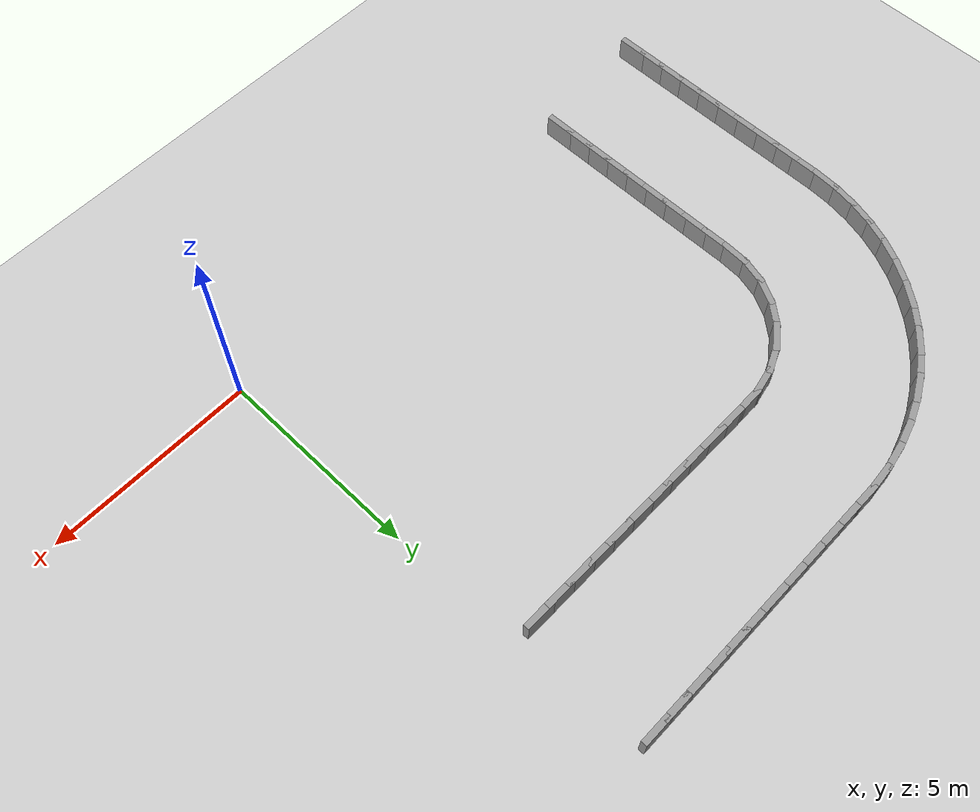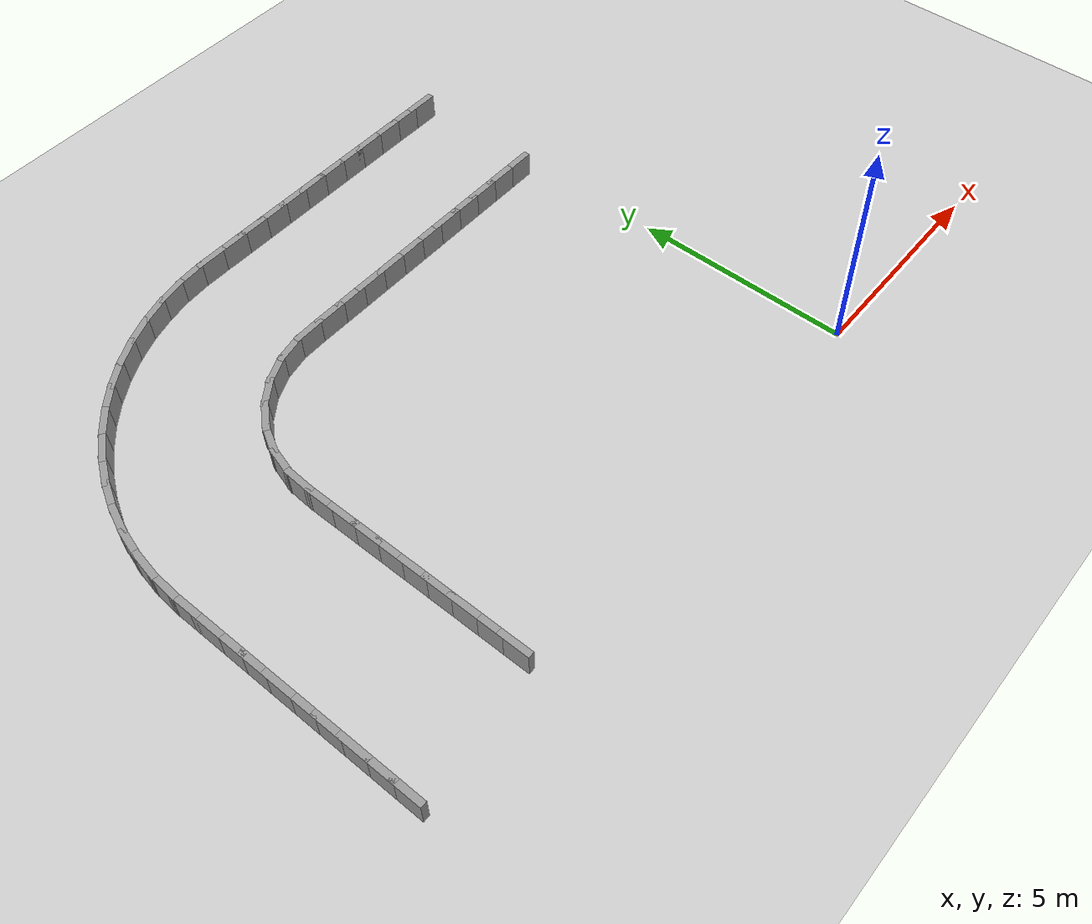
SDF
<sdf version="1.7">
 <world name="default">
  <model name="ground_plane">
   <static>1</static>
   <link name="link">
    <collision name="collision">
     <geometry><plane><normal>0 0 1</normal><size>100 100</size></plane></geometry>
     <surface><friction><ode><mu>100</mu><mu2>50</mu2></ode></friction></surface>
    </collision>
    <visual name="visual">
     <cast_shadows>0</cast_shadows>
     <geometry><plane><normal>0 0 1</normal><size>100 100</size></plane></geometry>
     <material>
      <script><uri>file://media/materials/scripts/gazebo.material</uri><name>Gazebo/Grey</name></script>
     </material>
    </visual>
   </link>
  </model>
  <model name="rand_rrect_01">
   <link name="Wall_20">
    <collision name="Wall_20_Collision">
     <geometry><box><size>0.7500 0.1500 0.6000</size></box></geometry>
     <pose>0 0 0.3000 0 -0 0</pose>
    </collision>
    <visual name="Wall_20_Visual">
     <pose>0 0 0.3000 0 -0 0</pose>
     <geometry><box><size>0.7500 0.1500 0.6000</size></box></geometry>
     <material>
      <script><uri>file://media/materials/scripts/gazebo.material</uri><name>Gazebo/Grey</name></script>
      <ambient>1 1 1 1</ambient>
     </material>
    </visual>
    <pose>-0.6795 8.3232 0 0 -0 3.14159</pose>
   </link>
   <link name="Wall_21">
    <collision name="Wall_21_Collision">
     <geometry><box><size>0.7500 0.1500 0.6000</size></box></geometry>
     <pose>0 0 0.3000 0 -0 0</pose>
    </collision>
    <visual name="Wall_21_Visual">
     <pose>0 0 0.3000 0 -0 0</pose>
     <geometry><box><size>0.7500 0.1500 0.6000</size></box></geometry>
     <material>
      <script><uri>file://media/materials/scripts/gazebo.material</uri><name>Gazebo/Grey</name></script>
      <ambient>1 1 1 1</ambient>
     </material>
    </visual>
    <pose>-1.2795 8.3232 0 0 -0 3.14159</pose>
   </link>
   <link name="Wall_22">
    <collision name="Wall_22_Collision">
     <geometry><box><size>0.7500 0.1500 0.6000</size></box></geometry>
     <pose>0 0 0.3000 0 -0 0</pose>
    </collision>
    <visual name="Wall_22_Visual">
     <pose>0 0 0.3000 0 -0 0</pose>
     <geometry><box><size>0.7500 0.1500 0.6000</size></box></geometry>
     <material>
      <script><uri>file://media/materials/scripts/gazebo.material</uri><name>Gazebo/Grey</name></script>
      <ambient>1 1 1 1</ambient>
     </material>
    </visual>
    <pose>-1.8795 8.3232 0 0 -0 3.14159</pose>
   </link>
   <link name="Wall_23">
    <collision name="Wall_23_Collision">
     <geometry><box><size>0.7500 0.1500 0.6000</size></box></geometry>
     <pose>0 0 0.3000 0 -0 0</pose>
    </collision>
    <visual name="Wall_23_Visual">
     <pose>0 0 0.3000 0 -0 0</pose>
     <geometry><box><size>0.7500 0.1500 0.6000</size></box></geometry>
     <material>
      <script><uri>file://media/materials/scripts/gazebo.material</uri><name>Gazebo/Grey</name></script>
      <ambient>1 1 1 1</ambient>
     </material>
    </visual>
    <pose>-2.4795 8.3232 0 0 -0 3.14159</pose>
   </link>
   <link name="Wall_24">
    <collision name="Wall_24_Collision">
     <geometry><box><size>0.7500 0.1500 0.6000</size></box></geometry>
     <pose>0 0 0.3000 0 -0 0</pose>
    </collision>
    <visual name="Wall_24_Visual">
     <pose>0 0 0.3000 0 -0 0</pose>
     <geometry><box><size>0.7500 0.1500 0.6000</size></box></geometry>
     <material>
      <script><uri>file://media/materials/scripts/gazebo.material</uri><name>Gazebo/Grey</name></script>
      <ambient>1 1 1 1</ambient>
     </material>
    </visual>
    <pose>-3.0795 8.3232 0 0 -0 3.14159</pose>
   </link>
   <link name="Wall_25">
    <collision name="Wall_25_Collision">
     <geometry><box><size>0.7500 0.1500 0.6000</size></box></geometry>
     <pose>0 0 0.3000 0 -0 0</pose>
    </collision>
    <visual name="Wall_25_Visual">
     <pose>0 0 0.3000 0 -0 0</pose>
     <geometry><box><size>0.7500 0.1500 0.6000</size></box></geometry>
     <material>
      <script><uri>file://media/materials/scripts/gazebo.material</uri><name>Gazebo/Grey</name></script>
      <ambient>1 1 1 1</ambient>
     </material>
    </visual>
    <pose>-3.6795 8.3232 0 0 -0 3.14159</pose>
   </link>
   <link name="Wall_26">
    <collision name="Wall_26_Collision">
     <geometry><box><size>0.7500 0.1500 0.6000</size></box></geometry>
     <pose>0 0 0.3000 0 -0 0</pose>
    </collision>
    <visual name="Wall_26_Visual">
     <pose>0 0 0.3000 0 -0 0</pose>
     <geometry><box><size>0.7500 0.1500 0.6000</size></box></geometry>
     <material>
      <script><uri>file://media/materials/scripts/gazebo.material</uri><name>Gazebo/Grey</name></script>
      <ambient>1 1 1 1</ambient>
     </material>
    </visual>
    <pose>-4.2795 8.3232 0 0 -0 3.14159</pose>
   </link>
   <link name="Wall_27">
    <collision name="Wall_27_Collision">
     <geometry><box><size>0.7500 0.1500 0.6000</size></box></geometry>
     <pose>0 0 0.3000 0 -0 0</pose>
    </collision>
    <visual name="Wall_27_Visual">
     <pose>0 0 0.3000 0 -0 0</pose>
     <geometry><box><size>0.7500 0.1500 0.6000</size></box></geometry>
     <material>
      <script><uri>file://media/materials/scripts/gazebo.material</uri><name>Gazebo/Grey</name></script>
      <ambient>1 1 1 1</ambient>
     </material>
    </visual>
    <pose>-4.8795 8.3232 0 0 -0 3.14159</pose>
   </link>
   <link name="Wall_28">
    <collision name="Wall_28_Collision">
     <geometry><box><size>0.7500 0.1500 0.6000</size></box></geometry>
     <pose>0 0 0.3000 0 -0 0</pose>
    </collision>
    <visual name="Wall_28_Visual">
     <pose>0 0 0.3000 0 -0 0</pose>
     <geometry><box><size>0.7500 0.1500 0.6000</size></box></geometry>
     <material>
      <script><uri>file://media/materials/scripts/gazebo.material</uri><name>Gazebo/Grey</name></script>
      <ambient>1 1 1 1</ambient>
     </material>
    </visual>
    <pose>-5.4795 8.3232 0 0 -0 3.14159</pose>
   </link>
   <link name="Wall_29">
    <collision name="Wall_29_Collision">
     <geometry><box><size>0.7500 0.1500 0.6000</size></box></geometry>
     <pose>0 0 0.3000 0 -0 0</pose>
    </collision>
    <visual name="Wall_29_Visual">
     <pose>0 0 0.3000 0 -0 0</pose>
     <geometry><box><size>0.7500 0.1500 0.6000</size></box></geometry>
     <material>
      <script><uri>file://media/materials/scripts/gazebo.material</uri><name>Gazebo/Grey</name></script>
      <ambient>1 1 1 1</ambient>
     </material>
    </visual>
    <pose>-6.0795 8.3232 0 0 -0 3.14159</pose>
   </link>
   <link name="Wall_30">
    <collision name="Wall_30_Collision">
     <geometry><box><size>0.7500 0.1500 0.6000</size></box></geometry>
     <pose>0 0 0.3000 0 -0 0</pose>
    </collision>
    <visual name="Wall_30_Visual">
     <pose>0 0 0.3000 0 -0 0</pose>
     <geometry><box><size>0.7500 0.1500 0.6000</size></box></geometry>
     <material>
      <script><uri>file://media/materials/scripts/gazebo.material</uri><name>Gazebo/Grey</name></script>
      <ambient>1 1 1 1</ambient>
     </material>
    </visual>
    <pose>-6.6795 8.3232 0 0 -0 3.14159</pose>
   </link>
   <link name="Wall_31">
    <collision name="Wall_31_Collision">
     <geometry><box><size>0.7497 0.1500 0.6000</size></box></geometry>
     <pose>0 0 0.3000 0 -0 0</pose>
    </collision>
    <visual name="Wall_31_Visual">
     <pose>0 0 0.3000 0 -0 0</pose>
     <geometry><box><size>0.7497 0.1500 0.6000</size></box></geometry>
     <material>
      <script><uri>file://media/materials/scripts/gazebo.material</uri><name>Gazebo/Grey</name></script>
      <ambient>1 1 1 1</ambient>
     </material>
    </visual>
    <pose>-7.2793 8.3170 0 0 -0 -3.12059</pose>
   </link>
   <link name="Wall_32">
    <collision name="Wall_32_Collision">
     <geometry><box><size>0.7488 0.1500 0.6000</size></box></geometry>
     <pose>0 0 0.3000 0 -0 0</pose>
    </collision>
    <visual name="Wall_32_Visual">
     <pose>0 0 0.3000 0 -0 0</pose>
     <geometry><box><size>0.7488 0.1500 0.6000</size></box></geometry>
     <material>
      <script><uri>file://media/materials/scripts/gazebo.material</uri><name>Gazebo/Grey</name></script>
      <ambient>1 1 1 1</ambient>
     </material>
    </visual>
    <pose>-7.8722 8.2496 0 0 -0 -2.93620</pose>
   </link>
   <link name="Wall_33">
    <collision name="Wall_33_Collision">
     <geometry><box><size>0.7488 0.1500 0.6000</size></box></geometry>
     <pose>0 0 0.3000 0 -0 0</pose>
    </collision>
    <visual name="Wall_33_Visual">
     <pose>0 0 0.3000 0 -0 0</pose>
     <geometry><box><size>0.7488 0.1500 0.6000</size></box></geometry>
     <material>
      <script><uri>file://media/materials/scripts/gazebo.material</uri><name>Gazebo/Grey</name></script>
      <ambient>1 1 1 1</ambient>
     </material>
    </visual>
    <pose>-8.4382 8.0652 0 0 -0 -2.71719</pose>
   </link>
   <link name="Wall_34">
    <collision name="Wall_34_Collision">
     <geometry><box><size>0.7488 0.1500 0.6000</size></box></geometry>
     <pose>0 0 0.3000 0 -0 0</pose>
    </collision>
    <visual name="Wall_34_Visual">
     <pose>0 0 0.3000 0 -0 0</pose>
     <geometry><box><size>0.7488 0.1500 0.6000</size></box></geometry>
     <material>
      <script><uri>file://media/materials/scripts/gazebo.material</uri><name>Gazebo/Grey</name></script>
      <ambient>1 1 1 1</ambient>
     </material>
    </visual>
    <pose>-8.9506 7.7623 0 0 -0 -2.49821</pose>
   </link>
   <link name="Wall_35">
    <collision name="Wall_35_Collision">
     <geometry><box><size>0.7488 0.1500 0.6000</size></box></geometry>
     <pose>0 0 0.3000 0 -0 0</pose>
    </collision>
    <visual name="Wall_35_Visual">
     <pose>0 0 0.3000 0 -0 0</pose>
     <geometry><box><size>0.7488 0.1500 0.6000</size></box></geometry>
     <material>
      <script><uri>file://media/materials/scripts/gazebo.material</uri><name>Gazebo/Grey</name></script>
      <ambient>1 1 1 1</ambient>
     </material>
    </visual>
    <pose>-9.3849 7.3554 0 0 -0 -2.27922</pose>
   </link>
   <link name="Wall_36">
    <collision name="Wall_36_Collision">
     <geometry><box><size>0.7488 0.1500 0.6000</size></box></geometry>
     <pose>0 0 0.3000 0 -0 0</pose>
    </collision>
    <visual name="Wall_36_Visual">
     <pose>0 0 0.3000 0 -0 0</pose>
     <geometry><box><size>0.7488 0.1500 0.6000</size></box></geometry>
     <material>
      <script><uri>file://media/materials/scripts/gazebo.material</uri><name>Gazebo/Grey</name></script>
      <ambient>1 1 1 1</ambient>
     </material>
    </visual>
    <pose>-9.7205 6.8638 0 0 -0 -2.06021</pose>
   </link>
   <link name="Wall_37">
    <collision name="Wall_37_Collision">
     <geometry><box><size>0.7488 0.1500 0.6000</size></box></geometry>
     <pose>0 0 0.3000 0 -0 0</pose>
    </collision>
    <visual name="Wall_37_Visual">
     <pose>0 0 0.3000 0 -0 0</pose>
     <geometry><box><size>0.7488 0.1500 0.6000</size></box></geometry>
     <material>
      <script><uri>file://media/materials/scripts/gazebo.material</uri><name>Gazebo/Grey</name></script>
      <ambient>1 1 1 1</ambient>
     </material>
    </visual>
    <pose>-9.9412 6.3110 0 0 -0 -1.84123</pose>
   </link>
   <link name="Wall_38">
    <collision name="Wall_38_Collision">
     <geometry><box><size>0.7491 0.1500 0.6000</size></box></geometry>
     <pose>0 0 0.3000 0 -0 0</pose>
    </collision>
    <visual name="Wall_38_Visual">
     <pose>0 0 0.3000 0 -0 0</pose>
     <geometry><box><size>0.7491 0.1500 0.6000</size></box></geometry>
     <material>
      <script><uri>file://media/materials/scripts/gazebo.material</uri><name>Gazebo/Grey</name></script>
      <ambient>1 1 1 1</ambient>
     </material>
    </visual>
    <pose>-10.0389 5.7234 0 0 -0 -1.62993</pose>
   </link>
   <link name="Wall_39">
    <collision name="Wall_39_Collision">
     <geometry><box><size>0.7500 0.1500 0.6000</size></box></geometry>
     <pose>0 0 0.3000 0 -0 0</pose>
    </collision>
    <visual name="Wall_39_Visual">
     <pose>0 0 0.3000 0 -0 0</pose>
     <geometry><box><size>0.7500 0.1500 0.6000</size></box></geometry>
     <material>
      <script><uri>file://media/materials/scripts/gazebo.material</uri><name>Gazebo/Grey</name></script>
      <ambient>1 1 1 1</ambient>
     </material>
    </visual>
    <pose>-10.0566 5.1244 0 0 -0 -1.57080</pose>
   </link>
   <link name="Wall_40">
    <collision name="Wall_40_Collision">
     <geometry><box><size>0.7500 0.1500 0.6000</size></box></geometry>
     <pose>0 0 0.3000 0 -0 0</pose>
    </collision>
    <visual name="Wall_40_Visual">
     <pose>0 0 0.3000 0 -0 0</pose>
     <geometry><box><size>0.7500 0.1500 0.6000</size></box></geometry>
     <material>
      <script><uri>file://media/materials/scripts/gazebo.material</uri><name>Gazebo/Grey</name></script>
      <ambient>1 1 1 1</ambient>
     </material>
    </visual>
    <pose>-10.0566 4.5244 0 0 -0 -1.57080</pose>
   </link>
   <link name="Wall_41">
    <collision name="Wall_41_Collision">
     <geometry><box><size>0.7500 0.1500 0.6000</size></box></geometry>
     <pose>0 0 0.3000 0 -0 0</pose>
    </collision>
    <visual name="Wall_41_Visual">
     <pose>0 0 0.3000 0 -0 0</pose>
     <geometry><box><size>0.7500 0.1500 0.6000</size></box></geometry>
     <material>
      <script><uri>file://media/materials/scripts/gazebo.material</uri><name>Gazebo/Grey</name></script>
      <ambient>1 1 1 1</ambient>
     </material>
    </visual>
    <pose>-10.0566 3.9244 0 0 -0 -1.57080</pose>
   </link>
   <link name="Wall_42">
    <collision name="Wall_42_Collision">
     <geometry><box><size>0.7500 0.1500 0.6000</size></box></geometry>
     <pose>0 0 0.3000 0 -0 0</pose>
    </collision>
    <visual name="Wall_42_Visual">
     <pose>0 0 0.3000 0 -0 0</pose>
     <geometry><box><size>0.7500 0.1500 0.6000</size></box></geometry>
     <material>
      <script><uri>file://media/materials/scripts/gazebo.material</uri><name>Gazebo/Grey</name></script>
      <ambient>1 1 1 1</ambient>
     </material>
    </visual>
    <pose>-10.0566 3.3244 0 0 -0 -1.57080</pose>
   </link>
   <link name="Wall_43">
    <collision name="Wall_43_Collision">
     <geometry><box><size>0.7500 0.1500 0.6000</size></box></geometry>
     <pose>0 0 0.3000 0 -0 0</pose>
    </collision>
    <visual name="Wall_43_Visual">
     <pose>0 0 0.3000 0 -0 0</pose>
     <geometry><box><size>0.7500 0.1500 0.6000</size></box></geometry>
     <material>
      <script><uri>file://media/materials/scripts/gazebo.material</uri><name>Gazebo/Grey</name></script>
      <ambient>1 1 1 1</ambient>
     </material>
    </visual>
    <pose>-10.0566 2.7244 0 0 -0 -1.57080</pose>
   </link>
   <link name="Wall_44">
    <collision name="Wall_44_Collision">
     <geometry><box><size>0.7500 0.1500 0.6000</size></box></geometry>
     <pose>0 0 0.3000 0 -0 0</pose>
    </collision>
    <visual name="Wall_44_Visual">
     <pose>0 0 0.3000 0 -0 0</pose>
     <geometry><box><size>0.7500 0.1500 0.6000</size></box></geometry>
     <material>
      <script><uri>file://media/materials/scripts/gazebo.material</uri><name>Gazebo/Grey</name></script>
      <ambient>1 1 1 1</ambient>
     </material>
    </visual>
    <pose>-10.0566 2.1244 0 0 -0 -1.57080</pose>
   </link>
   <link name="Wall_45">
    <collision name="Wall_45_Collision">
     <geometry><box><size>0.7500 0.1500 0.6000</size></box></geometry>
     <pose>0 0 0.3000 0 -0 0</pose>
    </collision>
    <visual name="Wall_45_Visual">
     <pose>0 0 0.3000 0 -0 0</pose>
     <geometry><box><size>0.7500 0.1500 0.6000</size></box></geometry>
     <material>
      <script><uri>file://media/materials/scripts/gazebo.material</uri><name>Gazebo/Grey</name></script>
      <ambient>1 1 1 1</ambient>
     </material>
    </visual>
    <pose>-10.0566 1.5244 0 0 -0 -1.57080</pose>
   </link>
   <link name="Wall_46">
    <collision name="Wall_46_Collision">
     <geometry><box><size>0.7500 0.1500 0.6000</size></box></geometry>
     <pose>0 0 0.3000 0 -0 0</pose>
    </collision>
    <visual name="Wall_46_Visual">
     <pose>0 0 0.3000 0 -0 0</pose>
     <geometry><box><size>0.7500 0.1500 0.6000</size></box></geometry>
     <material>
      <script><uri>file://media/materials/scripts/gazebo.material</uri><name>Gazebo/Grey</name></script>
      <ambient>1 1 1 1</ambient>
     </material>
    </visual>
    <pose>-10.0566 0.9244 0 0 -0 -1.57080</pose>
   </link>
   <link name="Wall_47">
    <collision name="Wall_47_Collision">
     <geometry><box><size>0.7500 0.1500 0.6000</size></box></geometry>
     <pose>0 0 0.3000 0 -0 0</pose>
    </collision>
    <visual name="Wall_47_Visual">
     <pose>0 0 0.3000 0 -0 0</pose>
     <geometry><box><size>0.7500 0.1500 0.6000</size></box></geometry>
     <material>
      <script><uri>file://media/materials/scripts/gazebo.material</uri><name>Gazebo/Grey</name></script>
      <ambient>1 1 1 1</ambient>
     </material>
    </visual>
    <pose>-10.0566 0.3244 0 0 -0 -1.57080</pose>
   </link>
   <link name="Wall_142">
    <collision name="Wall_142_Collision">
     <geometry><box><size>0.7500 0.1500 0.6000</size></box></geometry>
     <pose>0 0 0.3000 0 -0 0</pose>
    </collision>
    <visual name="Wall_142_Visual">
     <pose>0 0 0.3000 0 -0 0</pose>
     <geometry><box><size>0.7500 0.1500 0.6000</size></box></geometry>
     <material>
      <script><uri>file://media/materials/scripts/gazebo.material</uri><name>Gazebo/Grey</name></script>
      <ambient>1 1 1 1</ambient>
     </material>
    </visual>
    <pose>-0.5693 11.4492 0 0 -0 3.14159</pose>
   </link>
   <link name="Wall_143">
    <collision name="Wall_143_Collision">
     <geometry><box><size>0.7500 0.1500 0.6000</size></box></geometry>
     <pose>0 0 0.3000 0 -0 0</pose>
    </collision>
    <visual name="Wall_143_Visual">
     <pose>0 0 0.3000 0 -0 0</pose>
     <geometry><box><size>0.7500 0.1500 0.6000</size></box></geometry>
     <material>
      <script><uri>file://media/materials/scripts/gazebo.material</uri><name>Gazebo/Grey</name></script>
      <ambient>1 1 1 1</ambient>
     </material>
    </visual>
    <pose>-1.1693 11.4492 0 0 -0 3.14159</pose>
   </link>
   <link name="Wall_144">
    <collision name="Wall_144_Collision">
     <geometry><box><size>0.7500 0.1500 0.6000</size></box></geometry>
     <pose>0 0 0.3000 0 -0 0</pose>
    </collision>
    <visual name="Wall_144_Visual">
     <pose>0 0 0.3000 0 -0 0</pose>
     <geometry><box><size>0.7500 0.1500 0.6000</size></box></geometry>
     <material>
      <script><uri>file://media/materials/scripts/gazebo.material</uri><name>Gazebo/Grey</name></script>
      <ambient>1 1 1 1</ambient>
     </material>
    </visual>
    <pose>-1.7693 11.4492 0 0 -0 3.14159</pose>
   </link>
   <link name="Wall_145">
    <collision name="Wall_145_Collision">
     <geometry><box><size>0.7500 0.1500 0.6000</size></box></geometry>
     <pose>0 0 0.3000 0 -0 0</pose>
    </collision>
    <visual name="Wall_145_Visual">
     <pose>0 0 0.3000 0 -0 0</pose>
     <geometry><box><size>0.7500 0.1500 0.6000</size></box></geometry>
     <material>
      <script><uri>file://media/materials/scripts/gazebo.material</uri><name>Gazebo/Grey</name></script>
      <ambient>1 1 1 1</ambient>
     </material>
    </visual>
    <pose>-2.3693 11.4492 0 0 -0 3.14159</pose>
   </link>
   <link name="Wall_146">
    <collision name="Wall_146_Collision">
     <geometry><box><size>0.7500 0.1500 0.6000</size></box></geometry>
     <pose>0 0 0.3000 0 -0 0</pose>
    </collision>
    <visual name="Wall_146_Visual">
     <pose>0 0 0.3000 0 -0 0</pose>
     <geometry><box><size>0.7500 0.1500 0.6000</size></box></geometry>
     <material>
      <script><uri>file://media/materials/scripts/gazebo.material</uri><name>Gazebo/Grey</name></script>
      <ambient>1 1 1 1</ambient>
     </material>
    </visual>
    <pose>-2.9693 11.4492 0 0 -0 3.14159</pose>
   </link>
   <link name="Wall_147">
    <collision name="Wall_147_Collision">
     <geometry><box><size>0.7500 0.1500 0.6000</size></box></geometry>
     <pose>0 0 0.3000 0 -0 0</pose>
    </collision>
    <visual name="Wall_147_Visual">
     <pose>0 0 0.3000 0 -0 0</pose>
     <geometry><box><size>0.7500 0.1500 0.6000</size></box></geometry>
     <material>
      <script><uri>file://media/materials/scripts/gazebo.material</uri><name>Gazebo/Grey</name></script>
      <ambient>1 1 1 1</ambient>
     </material>
    </visual>
    <pose>-3.5693 11.4492 0 0 -0 3.14159</pose>
   </link>
   <link name="Wall_148">
    <collision name="Wall_148_Collision">
     <geometry><box><size>0.7500 0.1500 0.6000</size></box></geometry>
     <pose>0 0 0.3000 0 -0 0</pose>
    </collision>
    <visual name="Wall_148_Visual">
     <pose>0 0 0.3000 0 -0 0</pose>
     <geometry><box><size>0.7500 0.1500 0.6000</size></box></geometry>
     <material>
      <script><uri>file://media/materials/scripts/gazebo.material</uri><name>Gazebo/Grey</name></script>
      <ambient>1 1 1 1</ambient>
     </material>
    </visual>
    <pose>-4.1693 11.4492 0 0 -0 3.14159</pose>
   </link>
   <link name="Wall_149">
    <collision name="Wall_149_Collision">
     <geometry><box><size>0.7500 0.1500 0.6000</size></box></geometry>
     <pose>0 0 0.3000 0 -0 0</pose>
    </collision>
    <visual name="Wall_149_Visual">
     <pose>0 0 0.3000 0 -0 0</pose>
     <geometry><box><size>0.7500 0.1500 0.6000</size></box></geometry>
     <material>
      <script><uri>file://media/materials/scripts/gazebo.material</uri><name>Gazebo/Grey</name></script>
      <ambient>1 1 1 1</ambient>
     </material>
    </visual>
    <pose>-4.7693 11.4492 0 0 -0 3.14159</pose>
   </link>
   <link name="Wall_150">
    <collision name="Wall_150_Collision">
     <geometry><box><size>0.7500 0.1500 0.6000</size></box></geometry>
     <pose>0 0 0.3000 0 -0 0</pose>
    </collision>
    <visual name="Wall_150_Visual">
     <pose>0 0 0.3000 0 -0 0</pose>
     <geometry><box><size>0.7500 0.1500 0.6000</size></box></geometry>
     <material>
      <script><uri>file://media/materials/scripts/gazebo.material</uri><name>Gazebo/Grey</name></script>
      <ambient>1 1 1 1</ambient>
     </material>
    </visual>
    <pose>-5.3693 11.4492 0 0 -0 3.14159</pose>
   </link>
   <link name="Wall_151">
    <collision name="Wall_151_Collision">
     <geometry><box><size>0.7500 0.1500 0.6000</size></box></geometry>
     <pose>0 0 0.3000 0 -0 0</pose>
    </collision>
    <visual name="Wall_151_Visual">
     <pose>0 0 0.3000 0 -0 0</pose>
     <geometry><box><size>0.7500 0.1500 0.6000</size></box></geometry>
     <material>
      <script><uri>file://media/materials/scripts/gazebo.material</uri><name>Gazebo/Grey</name></script>
      <ambient>1 1 1 1</ambient>
     </material>
    </visual>
    <pose>-5.9693 11.4492 0 0 -0 3.14159</pose>
   </link>
   <link name="Wall_152">
    <collision name="Wall_152_Collision">
     <geometry><box><size>0.7500 0.1500 0.6000</size></box></geometry>
     <pose>0 0 0.3000 0 -0 0</pose>
    </collision>
    <visual name="Wall_152_Visual">
     <pose>0 0 0.3000 0 -0 0</pose>
     <geometry><box><size>0.7500 0.1500 0.6000</size></box></geometry>
     <material>
      <script><uri>file://media/materials/scripts/gazebo.material</uri><name>Gazebo/Grey</name></script>
      <ambient>1 1 1 1</ambient>
     </material>
    </visual>
    <pose>-6.5693 11.4492 0 0 -0 3.14159</pose>
   </link>
   <link name="Wall_153">
    <collision name="Wall_153_Collision">
     <geometry><box><size>0.7500 0.1500 0.6000</size></box></geometry>
     <pose>0 0 0.3000 0 -0 0</pose>
    </collision>
    <visual name="Wall_153_Visual">
     <pose>0 0 0.3000 0 -0 0</pose>
     <geometry><box><size>0.7500 0.1500 0.6000</size></box></geometry>
     <material>
      <script><uri>file://media/materials/scripts/gazebo.material</uri><name>Gazebo/Grey</name></script>
      <ambient>1 1 1 1</ambient>
     </material>
    </visual>
    <pose>-7.1693 11.4482 0 0 -0 -3.13827</pose>
   </link>
   <link name="Wall_154">
    <collision name="Wall_154_Collision">
     <geometry><box><size>0.7497 0.1500 0.6000</size></box></geometry>
     <pose>0 0 0.3000 0 -0 0</pose>
    </collision>
    <visual name="Wall_154_Visual">
     <pose>0 0 0.3000 0 -0 0</pose>
     <geometry><box><size>0.7497 0.1500 0.6000</size></box></geometry>
     <material>
      <script><uri>file://media/materials/scripts/gazebo.material</uri><name>Gazebo/Grey</name></script>
      <ambient>1 1 1 1</ambient>
     </material>
    </visual>
    <pose>-7.7682 11.4241 0 0 -0 -3.06444</pose>
   </link>
   <link name="Wall_155">
    <collision name="Wall_155_Collision">
     <geometry><box><size>0.7497 0.1500 0.6000</size></box></geometry>
     <pose>0 0 0.3000 0 -0 0</pose>
    </collision>
    <visual name="Wall_155_Visual">
     <pose>0 0 0.3000 0 -0 0</pose>
     <geometry><box><size>0.7497 0.1500 0.6000</size></box></geometry>
     <material>
      <script><uri>file://media/materials/scripts/gazebo.material</uri><name>Gazebo/Grey</name></script>
      <ambient>1 1 1 1</ambient>
     </material>
    </visual>
    <pose>-8.3623 11.3475 0 0 -0 -2.96217</pose>
   </link>
   <link name="Wall_156">
    <collision name="Wall_156_Collision">
     <geometry><box><size>0.7497 0.1500 0.6000</size></box></geometry>
     <pose>0 0 0.3000 0 -0 0</pose>
    </collision>
    <visual name="Wall_156_Visual">
     <pose>0 0 0.3000 0 -0 0</pose>
     <geometry><box><size>0.7497 0.1500 0.6000</size></box></geometry>
     <material>
      <script><uri>file://media/materials/scripts/gazebo.material</uri><name>Gazebo/Grey</name></script>
      <ambient>1 1 1 1</ambient>
     </material>
    </visual>
    <pose>-8.9454 11.2106 0 0 -0 -2.85988</pose>
   </link>
   <link name="Wall_157">
    <collision name="Wall_157_Collision">
     <geometry><box><size>0.7497 0.1500 0.6000</size></box></geometry>
     <pose>0 0 0.3000 0 -0 0</pose>
    </collision>
    <visual name="Wall_157_Visual">
     <pose>0 0 0.3000 0 -0 0</pose>
     <geometry><box><size>0.7497 0.1500 0.6000</size></box></geometry>
     <material>
      <script><uri>file://media/materials/scripts/gazebo.material</uri><name>Gazebo/Grey</name></script>
      <ambient>1 1 1 1</ambient>
     </material>
    </visual>
    <pose>-9.5115 11.0149 0 0 -0 -2.75757</pose>
   </link>
   <link name="Wall_158">
    <collision name="Wall_158_Collision">
     <geometry><box><size>0.7497 0.1500 0.6000</size></box></geometry>
     <pose>0 0 0.3000 0 -0 0</pose>
    </collision>
    <visual name="Wall_158_Visual">
     <pose>0 0 0.3000 0 -0 0</pose>
     <geometry><box><size>0.7497 0.1500 0.6000</size></box></geometry>
     <material>
      <script><uri>file://media/materials/scripts/gazebo.material</uri><name>Gazebo/Grey</name></script>
      <ambient>1 1 1 1</ambient>
     </material>
    </visual>
    <pose>-10.0546 10.7624 0 0 -0 -2.65529</pose>
   </link>
   <link name="Wall_159">
    <collision name="Wall_159_Collision">
     <geometry><box><size>0.7497 0.1500 0.6000</size></box></geometry>
     <pose>0 0 0.3000 0 -0 0</pose>
    </collision>
    <visual name="Wall_159_Visual">
     <pose>0 0 0.3000 0 -0 0</pose>
     <geometry><box><size>0.7497 0.1500 0.6000</size></box></geometry>
     <material>
      <script><uri>file://media/materials/scripts/gazebo.material</uri><name>Gazebo/Grey</name></script>
      <ambient>1 1 1 1</ambient>
     </material>
    </visual>
    <pose>-10.5691 10.4558 0 0 -0 -2.55302</pose>
   </link>
   <link name="Wall_160">
    <collision name="Wall_160_Collision">
     <geometry><box><size>0.7497 0.1500 0.6000</size></box></geometry>
     <pose>0 0 0.3000 0 -0 0</pose>
    </collision>
    <visual name="Wall_160_Visual">
     <pose>0 0 0.3000 0 -0 0</pose>
     <geometry><box><size>0.7497 0.1500 0.6000</size></box></geometry>
     <material>
      <script><uri>file://media/materials/scripts/gazebo.material</uri><name>Gazebo/Grey</name></script>
      <ambient>1 1 1 1</ambient>
     </material>
    </visual>
    <pose>-11.0496 10.0982 0 0 -0 -2.45072</pose>
   </link>
   <link name="Wall_161">
    <collision name="Wall_161_Collision">
     <geometry><box><size>0.7497 0.1500 0.6000</size></box></geometry>
     <pose>0 0 0.3000 0 -0 0</pose>
    </collision>
    <visual name="Wall_161_Visual">
     <pose>0 0 0.3000 0 -0 0</pose>
     <geometry><box><size>0.7497 0.1500 0.6000</size></box></geometry>
     <material>
      <script><uri>file://media/materials/scripts/gazebo.material</uri><name>Gazebo/Grey</name></script>
      <ambient>1 1 1 1</ambient>
     </material>
    </visual>
    <pose>-11.4911 9.6935 0 0 -0 -2.34842</pose>
   </link>
   <link name="Wall_162">
    <collision name="Wall_162_Collision">
     <geometry><box><size>0.7497 0.1500 0.6000</size></box></geometry>
     <pose>0 0 0.3000 0 -0 0</pose>
    </collision>
    <visual name="Wall_162_Visual">
     <pose>0 0 0.3000 0 -0 0</pose>
     <geometry><box><size>0.7497 0.1500 0.6000</size></box></geometry>
     <material>
      <script><uri>file://media/materials/scripts/gazebo.material</uri><name>Gazebo/Grey</name></script>
      <ambient>1 1 1 1</ambient>
     </material>
    </visual>
    <pose>-11.8890 9.2457 0 0 -0 -2.24614</pose>
   </link>
   <link name="Wall_163">
    <collision name="Wall_163_Collision">
     <geometry><box><size>0.7497 0.1500 0.6000</size></box></geometry>
     <pose>0 0 0.3000 0 -0 0</pose>
    </collision>
    <visual name="Wall_163_Visual">
     <pose>0 0 0.3000 0 -0 0</pose>
     <geometry><box><size>0.7497 0.1500 0.6000</size></box></geometry>
     <material>
      <script><uri>file://media/materials/scripts/gazebo.material</uri><name>Gazebo/Grey</name></script>
      <ambient>1 1 1 1</ambient>
     </material>
    </visual>
    <pose>-12.2390 8.7597 0 0 -0 -2.14387</pose>
   </link>
   <link name="Wall_164">
    <collision name="Wall_164_Collision">
     <geometry><box><size>0.7497 0.1500 0.6000</size></box></geometry>
     <pose>0 0 0.3000 0 -0 0</pose>
    </collision>
    <visual name="Wall_164_Visual">
     <pose>0 0 0.3000 0 -0 0</pose>
     <geometry><box><size>0.7497 0.1500 0.6000</size></box></geometry>
     <material>
      <script><uri>file://media/materials/scripts/gazebo.material</uri><name>Gazebo/Grey</name></script>
      <ambient>1 1 1 1</ambient>
     </material>
    </visual>
    <pose>-12.5376 8.2405 0 0 -0 -2.04155</pose>
   </link>
   <link name="Wall_165">
    <collision name="Wall_165_Collision">
     <geometry><box><size>0.7497 0.1500 0.6000</size></box></geometry>
     <pose>0 0 0.3000 0 -0 0</pose>
    </collision>
    <visual name="Wall_165_Visual">
     <pose>0 0 0.3000 0 -0 0</pose>
     <geometry><box><size>0.7497 0.1500 0.6000</size></box></geometry>
     <material>
      <script><uri>file://media/materials/scripts/gazebo.material</uri><name>Gazebo/Grey</name></script>
      <ambient>1 1 1 1</ambient>
     </material>
    </visual>
    <pose>-12.7817 7.6935 0 0 -0 -1.93927</pose>
   </link>
   <link name="Wall_166">
    <collision name="Wall_166_Collision">
     <geometry><box><size>0.7497 0.1500 0.6000</size></box></geometry>
     <pose>0 0 0.3000 0 -0 0</pose>
    </collision>
    <visual name="Wall_166_Visual">
     <pose>0 0 0.3000 0 -0 0</pose>
     <geometry><box><size>0.7497 0.1500 0.6000</size></box></geometry>
     <material>
      <script><uri>file://media/materials/scripts/gazebo.material</uri><name>Gazebo/Grey</name></script>
      <ambient>1 1 1 1</ambient>
     </material>
    </visual>
    <pose>-12.9685 7.1245 0 0 -0 -1.83700</pose>
   </link>
   <link name="Wall_167">
    <collision name="Wall_167_Collision">
     <geometry><box><size>0.7497 0.1500 0.6000</size></box></geometry>
     <pose>0 0 0.3000 0 -0 0</pose>
    </collision>
    <visual name="Wall_167_Visual">
     <pose>0 0 0.3000 0 -0 0</pose>
     <geometry><box><size>0.7497 0.1500 0.6000</size></box></geometry>
     <material>
      <script><uri>file://media/materials/scripts/gazebo.material</uri><name>Gazebo/Grey</name></script>
      <ambient>1 1 1 1</ambient>
     </material>
    </visual>
    <pose>-13.0964 6.5393 0 0 -0 -1.73471</pose>
   </link>
   <link name="Wall_168">
    <collision name="Wall_168_Collision">
     <geometry><box><size>0.7497 0.1500 0.6000</size></box></geometry>
     <pose>0 0 0.3000 0 -0 0</pose>
    </collision>
    <visual name="Wall_168_Visual">
     <pose>0 0 0.3000 0 -0 0</pose>
     <geometry><box><size>0.7497 0.1500 0.6000</size></box></geometry>
     <material>
      <script><uri>file://media/materials/scripts/gazebo.material</uri><name>Gazebo/Grey</name></script>
      <ambient>1 1 1 1</ambient>
     </material>
    </visual>
    <pose>-13.1638 5.9442 0 0 -0 -1.63240</pose>
   </link>
   <link name="Wall_169">
    <collision name="Wall_169_Collision">
     <geometry><box><size>0.7500 0.1500 0.6000</size></box></geometry>
     <pose>0 0 0.3000 0 -0 0</pose>
    </collision>
    <visual name="Wall_169_Visual">
     <pose>0 0 0.3000 0 -0 0</pose>
     <geometry><box><size>0.7500 0.1500 0.6000</size></box></geometry>
     <material>
      <script><uri>file://media/materials/scripts/gazebo.material</uri><name>Gazebo/Grey</name></script>
      <ambient>1 1 1 1</ambient>
     </material>
    </visual>
    <pose>-13.1824 5.3449 0 0 -0 -1.57135</pose>
   </link>
   <link name="Wall_170">
    <collision name="Wall_170_Collision">
     <geometry><box><size>0.7500 0.1500 0.6000</size></box></geometry>
     <pose>0 0 0.3000 0 -0 0</pose>
    </collision>
    <visual name="Wall_170_Visual">
     <pose>0 0 0.3000 0 -0 0</pose>
     <geometry><box><size>0.7500 0.1500 0.6000</size></box></geometry>
     <material>
      <script><uri>file://media/materials/scripts/gazebo.material</uri><name>Gazebo/Grey</name></script>
      <ambient>1 1 1 1</ambient>
     </material>
    </visual>
    <pose>-13.1826 4.7449 0 0 -0 -1.57080</pose>
   </link>
   <link name="Wall_171">
    <collision name="Wall_171_Collision">
     <geometry><box><size>0.7500 0.1500 0.6000</size></box></geometry>
     <pose>0 0 0.3000 0 -0 0</pose>
    </collision>
    <visual name="Wall_171_Visual">
     <pose>0 0 0.3000 0 -0 0</pose>
     <geometry><box><size>0.7500 0.1500 0.6000</size></box></geometry>
     <material>
      <script><uri>file://media/materials/scripts/gazebo.material</uri><name>Gazebo/Grey</name></script>
      <ambient>1 1 1 1</ambient>
     </material>
    </visual>
    <pose>-13.1826 4.1449 0 0 -0 -1.57080</pose>
   </link>
   <link name="Wall_172">
    <collision name="Wall_172_Collision">
     <geometry><box><size>0.7500 0.1500 0.6000</size></box></geometry>
     <pose>0 0 0.3000 0 -0 0</pose>
    </collision>
    <visual name="Wall_172_Visual">
     <pose>0 0 0.3000 0 -0 0</pose>
     <geometry><box><size>0.7500 0.1500 0.6000</size></box></geometry>
     <material>
      <script><uri>file://media/materials/scripts/gazebo.material</uri><name>Gazebo/Grey</name></script>
      <ambient>1 1 1 1</ambient>
     </material>
    </visual>
    <pose>-13.1826 3.5449 0 0 -0 -1.57080</pose>
   </link>
   <link name="Wall_173">
    <collision name="Wall_173_Collision">
     <geometry><box><size>0.7500 0.1500 0.6000</size></box></geometry>
     <pose>0 0 0.3000 0 -0 0</pose>
    </collision>
    <visual name="Wall_173_Visual">
     <pose>0 0 0.3000 0 -0 0</pose>
     <geometry><box><size>0.7500 0.1500 0.6000</size></box></geometry>
     <material>
      <script><uri>file://media/materials/scripts/gazebo.material</uri><name>Gazebo/Grey</name></script>
      <ambient>1 1 1 1</ambient>
     </material>
    </visual>
    <pose>-13.1826 2.9449 0 0 -0 -1.57080</pose>
   </link>
   <link name="Wall_174">
    <collision name="Wall_174_Collision">
     <geometry><box><size>0.7500 0.1500 0.6000</size></box></geometry>
     <pose>0 0 0.3000 0 -0 0</pose>
    </collision>
    <visual name="Wall_174_Visual">
     <pose>0 0 0.3000 0 -0 0</pose>
     <geometry><box><size>0.7500 0.1500 0.6000</size></box></geometry>
     <material>
      <script><uri>file://media/materials/scripts/gazebo.material</uri><name>Gazebo/Grey</name></script>
      <ambient>1 1 1 1</ambient>
     </material>
    </visual>
    <pose>-13.1826 2.3449 0 0 -0 -1.57080</pose>
   </link>
   <link name="Wall_175">
    <collision name="Wall_175_Collision">
     <geometry><box><size>0.7500 0.1500 0.6000</size></box></geometry>
     <pose>0 0 0.3000 0 -0 0</pose>
    </collision>
    <visual name="Wall_175_Visual">
     <pose>0 0 0.3000 0 -0 0</pose>
     <geometry><box><size>0.7500 0.1500 0.6000</size></box></geometry>
     <material>
      <script><uri>file://media/materials/scripts/gazebo.material</uri><name>Gazebo/Grey</name></script>
      <ambient>1 1 1 1</ambient>
     </material>
    </visual>
    <pose>-13.1826 1.7449 0 0 -0 -1.57080</pose>
   </link>
   <link name="Wall_176">
    <collision name="Wall_176_Collision">
     <geometry><box><size>0.7500 0.1500 0.6000</size></box></geometry>
     <pose>0 0 0.3000 0 -0 0</pose>
    </collision>
    <visual name="Wall_176_Visual">
     <pose>0 0 0.3000 0 -0 0</pose>
     <geometry><box><size>0.7500 0.1500 0.6000</size></box></geometry>
     <material>
      <script><uri>file://media/materials/scripts/gazebo.material</uri><name>Gazebo/Grey</name></script>
      <ambient>1 1 1 1</ambient>
     </material>
    </visual>
    <pose>-13.1826 1.1449 0 0 -0 -1.57080</pose>
   </link>
   <link name="Wall_177">
    <collision name="Wall_177_Collision">
     <geometry><box><size>0.7500 0.1500 0.6000</size></box></geometry>
     <pose>0 0 0.3000 0 -0 0</pose>
    </collision>
    <visual name="Wall_177_Visual">
     <pose>0 0 0.3000 0 -0 0</pose>
     <geometry><box><size>0.7500 0.1500 0.6000</size></box></geometry>
     <material>
      <script><uri>file://media/materials/scripts/gazebo.material</uri><name>Gazebo/Grey</name></script>
      <ambient>1 1 1 1</ambient>
     </material>
    </visual>
    <pose>-13.1826 0.5449 0 0 -0 -1.57080</pose>
   </link>
   <link name="Wall_178">
    <collision name="Wall_178_Collision">
     <geometry><box><size>0.7500 0.1500 0.6000</size></box></geometry>
     <pose>0 0 0.3000 0 -0 0</pose>
    </collision>
    <visual name="Wall_178_Visual">
     <pose>0 0 0.3000 0 -0 0</pose>
     <geometry><box><size>0.7500 0.1500 0.6000</size></box></geometry>
     <material>
      <script><uri>file://media/materials/scripts/gazebo.material</uri><name>Gazebo/Grey</name></script>
      <ambient>1 1 1 1</ambient>
     </material>
    </visual>
    <pose>-13.1826 -0.0551 0 0 -0 -1.57080</pose>
   </link>
   <static>1</static>
  </model>
 </world>
</sdf>
